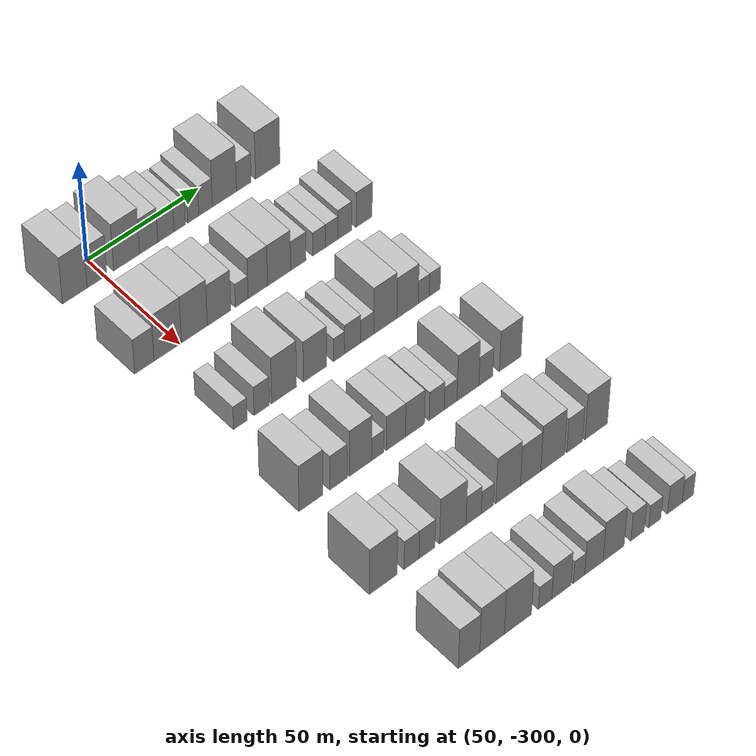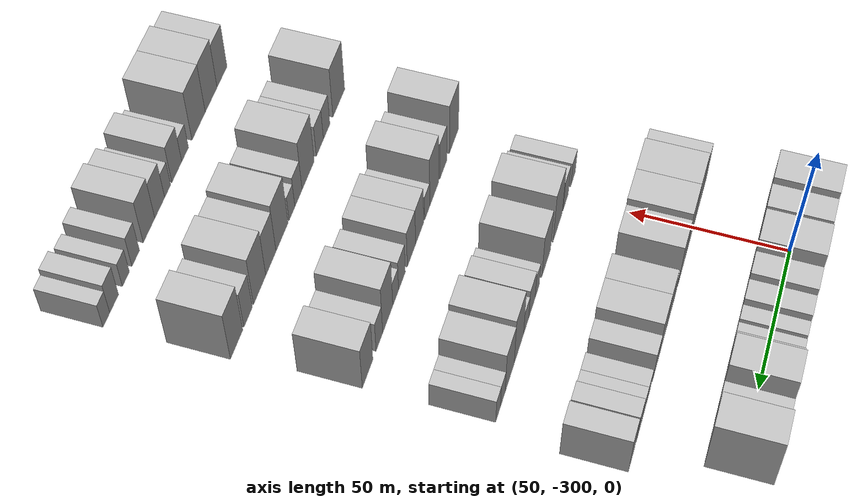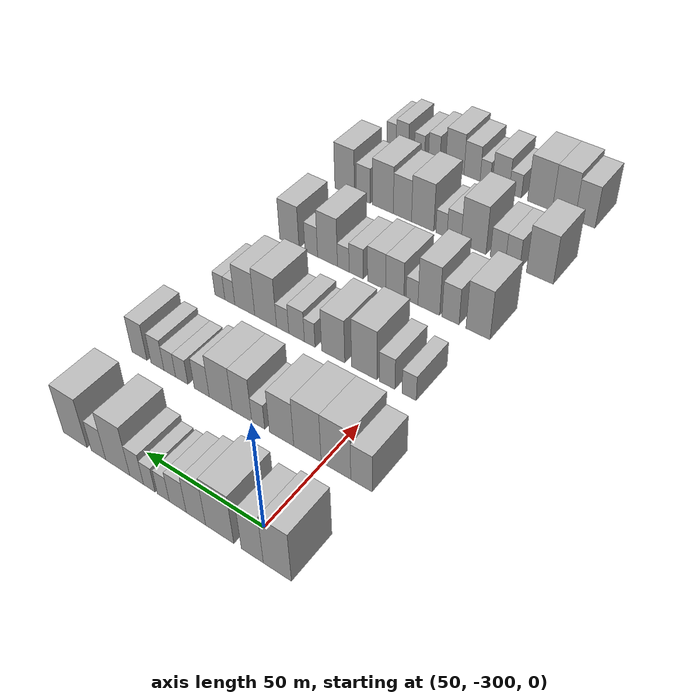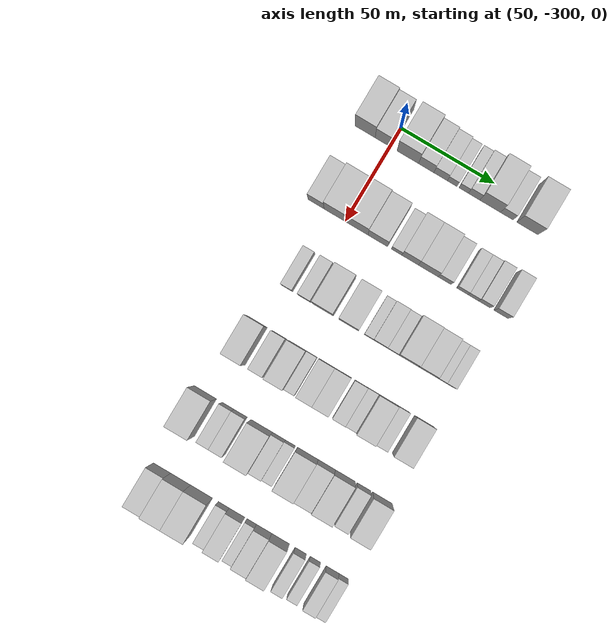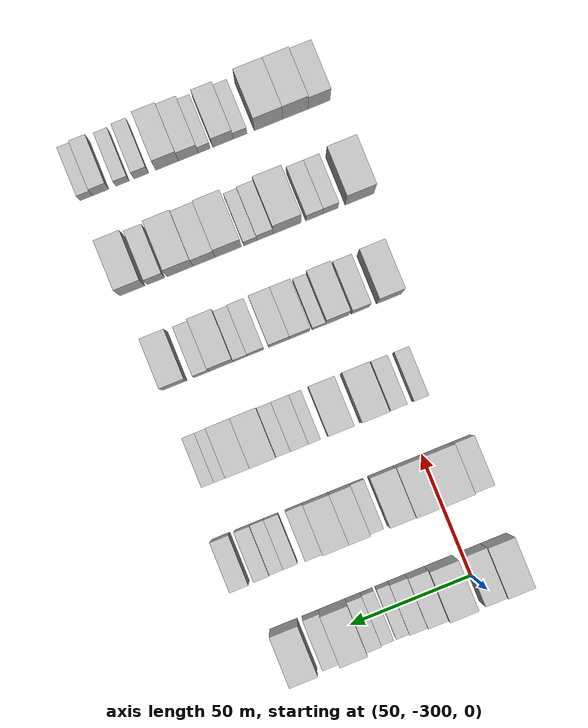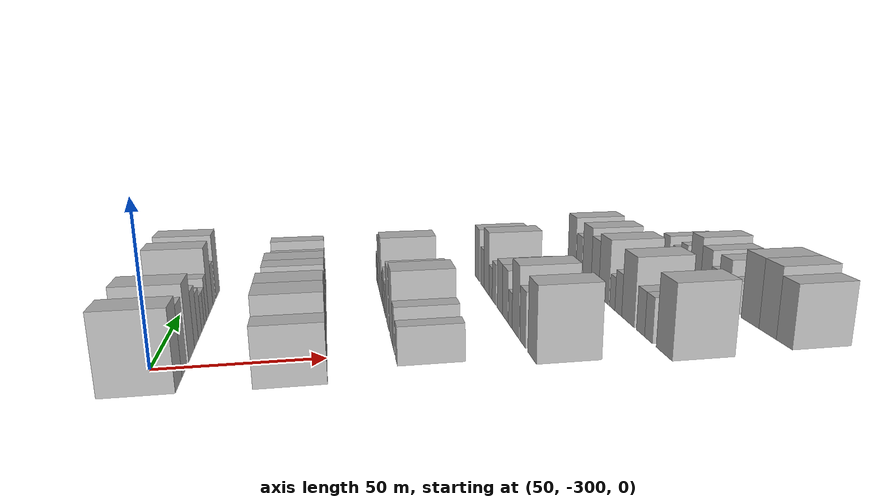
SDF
<sdf version="1.6">
 <world name="default">
  <model name="building_33">
   <static>1</static>
   <pose>50.0000 -313.2828 0 0.000000 0.000000 0.000000</pose>
   <link name="link">
    <pose>0 0 12.00 0 0 0</pose>
    <collision name="collision"><geometry><box><size>20.0000 10.7922 24.0000</size></box></geometry></collision>
    <visual name="visual">
     <cast_shadows>0</cast_shadows>
     <geometry><box><size>20.0000 10.7922 24.0000</size></box></geometry>
     <material>
      <script>
       <uri>model://HANNAS_wall/materials/scripts</uri>
       <uri>model://HANNAS_wall/materials/textures</uri>
       <name>vrc/HANNAS_wall</name>
      </script>
     </material>
    </visual>
   </link>
  </model>
  <model name="building_34">
   <static>1</static>
   <pose>50.0000 -303.5560 0 0.000000 0.000000 0.000000</pose>
   <link name="link">
    <pose>0 0 10.50 0 0 0</pose>
    <collision name="collision"><geometry><box><size>20.0000 8.6615 21.0000</size></box></geometry></collision>
    <visual name="visual">
     <cast_shadows>0</cast_shadows>
     <geometry><box><size>20.0000 8.6615 21.0000</size></box></geometry>
     <material>
      <script>
       <uri>model://HANNAS_wall/materials/scripts</uri>
       <uri>model://HANNAS_wall/materials/textures</uri>
       <name>vrc/HANNAS_wall</name>
      </script>
     </material>
    </visual>
   </link>
  </model>
  <model name="building_35">
   <static>1</static>
   <pose>50.0000 -290.4824 0 0.000000 0.000000 0.000000</pose>
   <link name="link">
    <pose>0 0 12.00 0 0 0</pose>
    <collision name="collision"><geometry><box><size>20.0000 11.4858 24.0000</size></box></geometry></collision>
    <visual name="visual">
     <cast_shadows>0</cast_shadows>
     <geometry><box><size>20.0000 11.4858 24.0000</size></box></geometry>
     <material>
      <script>
       <uri>model://HANNAS_wall/materials/scripts</uri>
       <uri>model://HANNAS_wall/materials/textures</uri>
       <name>vrc/HANNAS_wall</name>
      </script>
     </material>
    </visual>
   </link>
  </model>
  <model name="building_36">
   <static>1</static>
   <pose>50.0000 -280.6749 0 0.000000 0.000000 0.000000</pose>
   <link name="link">
    <pose>0 0 9.00 0 0 0</pose>
    <collision name="collision"><geometry><box><size>20.0000 8.1293 18.0000</size></box></geometry></collision>
    <visual name="visual">
     <cast_shadows>0</cast_shadows>
     <geometry><box><size>20.0000 8.1293 18.0000</size></box></geometry>
     <material>
      <script>
       <uri>model://HANNAS_wall/materials/scripts</uri>
       <uri>model://HANNAS_wall/materials/textures</uri>
       <name>vrc/HANNAS_wall</name>
      </script>
     </material>
    </visual>
   </link>
  </model>
  <model name="building_37">
   <static>1</static>
   <pose>50.0000 -273.0091 0 0.000000 0.000000 0.000000</pose>
   <link name="link">
    <pose>0 0 7.50 0 0 0</pose>
    <collision name="collision"><geometry><box><size>20.0000 7.2023 15.0000</size></box></geometry></collision>
    <visual name="visual">
     <cast_shadows>0</cast_shadows>
     <geometry><box><size>20.0000 7.2023 15.0000</size></box></geometry>
     <material>
      <script>
       <uri>model://HANNAS_wall/materials/scripts</uri>
       <uri>model://HANNAS_wall/materials/textures</uri>
       <name>vrc/HANNAS_wall</name>
      </script>
     </material>
    </visual>
   </link>
  </model>
  <model name="building_38">
   <static>1</static>
   <pose>50.0000 -266.8126 0 0.000000 0.000000 0.000000</pose>
   <link name="link">
    <pose>0 0 6.00 0 0 0</pose>
    <collision name="collision"><geometry><box><size>20.0000 5.1906 12.0000</size></box></geometry></collision>
    <visual name="visual">
     <cast_shadows>0</cast_shadows>
     <geometry><box><size>20.0000 5.1906 12.0000</size></box></geometry>
     <material>
      <script>
       <uri>model://HANNAS_wall/materials/scripts</uri>
       <uri>model://HANNAS_wall/materials/textures</uri>
       <name>vrc/HANNAS_wall</name>
      </script>
     </material>
    </visual>
   </link>
  </model>
  <model name="building_39">
   <static>1</static>
   <pose>50.0000 -260.6925 0 0.000000 0.000000 0.000000</pose>
   <link name="link">
    <pose>0 0 6.00 0 0 0</pose>
    <collision name="collision"><geometry><box><size>20.0000 5.0496 12.0000</size></box></geometry></collision>
    <visual name="visual">
     <cast_shadows>0</cast_shadows>
     <geometry><box><size>20.0000 5.0496 12.0000</size></box></geometry>
     <material>
      <script>
       <uri>model://HANNAS_wall/materials/scripts</uri>
       <uri>model://HANNAS_wall/materials/textures</uri>
       <name>vrc/HANNAS_wall</name>
      </script>
     </material>
    </visual>
   </link>
  </model>
  <model name="building_40">
   <static>1</static>
   <pose>50.0000 -255.1026 0 0.000000 0.000000 0.000000</pose>
   <link name="link">
    <pose>0 0 7.50 0 0 0</pose>
    <collision name="collision"><geometry><box><size>20.0000 6.1303 15.0000</size></box></geometry></collision>
    <visual name="visual">
     <cast_shadows>0</cast_shadows>
     <geometry><box><size>20.0000 6.1303 15.0000</size></box></geometry>
     <material>
      <script>
       <uri>model://HANNAS_wall/materials/scripts</uri>
       <uri>model://HANNAS_wall/materials/textures</uri>
       <name>vrc/HANNAS_wall</name>
      </script>
     </material>
    </visual>
   </link>
  </model>
  <model name="building_41">
   <static>1</static>
   <pose>50.0000 -246.5571 0 0.000000 0.000000 0.000000</pose>
   <link name="link">
    <pose>0 0 12.00 0 0 0</pose>
    <collision name="collision"><geometry><box><size>20.0000 10.9608 24.0000</size></box></geometry></collision>
    <visual name="visual">
     <cast_shadows>0</cast_shadows>
     <geometry><box><size>20.0000 10.9608 24.0000</size></box></geometry>
     <material>
      <script>
       <uri>model://HANNAS_wall/materials/scripts</uri>
       <uri>model://HANNAS_wall/materials/textures</uri>
       <name>vrc/HANNAS_wall</name>
      </script>
     </material>
    </visual>
   </link>
  </model>
  <model name="building_42">
   <static>1</static>
   <pose>50.0000 -237.6984 0 0.000000 0.000000 0.000000</pose>
   <link name="link">
    <pose>0 0 7.50 0 0 0</pose>
    <collision name="collision"><geometry><box><size>20.0000 6.7566 15.0000</size></box></geometry></collision>
    <visual name="visual">
     <cast_shadows>0</cast_shadows>
     <geometry><box><size>20.0000 6.7566 15.0000</size></box></geometry>
     <material>
      <script>
       <uri>model://HANNAS_wall/materials/scripts</uri>
       <uri>model://HANNAS_wall/materials/textures</uri>
       <name>vrc/HANNAS_wall</name>
      </script>
     </material>
    </visual>
   </link>
  </model>
  <model name="building_43">
   <static>1</static>
   <pose>50.0000 -226.6820 0 0.000000 0.000000 0.000000</pose>
   <link name="link">
    <pose>0 0 12.00 0 0 0</pose>
    <collision name="collision"><geometry><box><size>20.0000 11.2763 24.0000</size></box></geometry></collision>
    <visual name="visual">
     <cast_shadows>0</cast_shadows>
     <geometry><box><size>20.0000 11.2763 24.0000</size></box></geometry>
     <material>
      <script>
       <uri>model://HANNAS_wall/materials/scripts</uri>
       <uri>model://HANNAS_wall/materials/textures</uri>
       <name>vrc/HANNAS_wall</name>
      </script>
     </material>
    </visual>
   </link>
  </model>
  <model name="building_160">
   <static>1</static>
   <pose>90.0000 -315.5094 0 0.000000 0.000000 0.000000</pose>
   <link name="link">
    <pose>0 0 9.00 0 0 0</pose>
    <collision name="collision"><geometry><box><size>20.0000 8.4623 18.0000</size></box></geometry></collision>
    <visual name="visual">
     <cast_shadows>0</cast_shadows>
     <geometry><box><size>20.0000 8.4623 18.0000</size></box></geometry>
     <material>
      <script>
       <uri>model://HANNAS_wall/materials/scripts</uri>
       <uri>model://HANNAS_wall/materials/textures</uri>
       <name>vrc/HANNAS_wall</name>
      </script>
     </material>
    </visual>
   </link>
  </model>
  <model name="building_161">
   <static>1</static>
   <pose>90.0000 -305.2793 0 0.000000 0.000000 0.000000</pose>
   <link name="link">
    <pose>0 0 12.00 0 0 0</pose>
    <collision name="collision"><geometry><box><size>20.0000 11.9980 24.0000</size></box></geometry></collision>
    <visual name="visual">
     <cast_shadows>0</cast_shadows>
     <geometry><box><size>20.0000 11.9980 24.0000</size></box></geometry>
     <material>
      <script>
       <uri>model://HANNAS_wall/materials/scripts</uri>
       <uri>model://HANNAS_wall/materials/textures</uri>
       <name>vrc/HANNAS_wall</name>
      </script>
     </material>
    </visual>
   </link>
  </model>
  <model name="building_162">
   <static>1</static>
   <pose>90.0000 -293.5775 0 0.000000 0.000000 0.000000</pose>
   <link name="link">
    <pose>0 0 12.00 0 0 0</pose>
    <collision name="collision"><geometry><box><size>20.0000 11.4056 24.0000</size></box></geometry></collision>
    <visual name="visual">
     <cast_shadows>0</cast_shadows>
     <geometry><box><size>20.0000 11.4056 24.0000</size></box></geometry>
     <material>
      <script>
       <uri>model://HANNAS_wall/materials/scripts</uri>
       <uri>model://HANNAS_wall/materials/textures</uri>
       <name>vrc/HANNAS_wall</name>
      </script>
     </material>
    </visual>
   </link>
  </model>
  <model name="building_163">
   <static>1</static>
   <pose>90.0000 -282.6709 0 0.000000 0.000000 0.000000</pose>
   <link name="link">
    <pose>0 0 10.50 0 0 0</pose>
    <collision name="collision"><geometry><box><size>20.0000 10.4074 21.0000</size></box></geometry></collision>
    <visual name="visual">
     <cast_shadows>0</cast_shadows>
     <geometry><box><size>20.0000 10.4074 21.0000</size></box></geometry>
     <material>
      <script>
       <uri>model://HANNAS_wall/materials/scripts</uri>
       <uri>model://HANNAS_wall/materials/textures</uri>
       <name>vrc/HANNAS_wall</name>
      </script>
     </material>
    </visual>
   </link>
  </model>
  <model name="building_164">
   <static>1</static>
   <pose>90.0000 -272.6101 0 0.000000 0.000000 0.000000</pose>
   <link name="link">
    <pose>0 0 6.00 0 0 0</pose>
    <collision name="collision"><geometry><box><size>20.0000 5.7142 12.0000</size></box></geometry></collision>
    <visual name="visual">
     <cast_shadows>0</cast_shadows>
     <geometry><box><size>20.0000 5.7142 12.0000</size></box></geometry>
     <material>
      <script>
       <uri>model://HANNAS_wall/materials/scripts</uri>
       <uri>model://HANNAS_wall/materials/textures</uri>
       <name>vrc/HANNAS_wall</name>
      </script>
     </material>
    </visual>
   </link>
  </model>
  <model name="building_165">
   <static>1</static>
   <pose>90.0000 -265.3916 0 0.000000 0.000000 0.000000</pose>
   <link name="link">
    <pose>0 0 10.50 0 0 0</pose>
    <collision name="collision"><geometry><box><size>20.0000 8.7228 21.0000</size></box></geometry></collision>
    <visual name="visual">
     <cast_shadows>0</cast_shadows>
     <geometry><box><size>20.0000 8.7228 21.0000</size></box></geometry>
     <material>
      <script>
       <uri>model://HANNAS_wall/materials/scripts</uri>
       <uri>model://HANNAS_wall/materials/textures</uri>
       <name>vrc/HANNAS_wall</name>
      </script>
     </material>
    </visual>
   </link>
  </model>
  <model name="building_166">
   <static>1</static>
   <pose>90.0000 -255.7970 0 0.000000 0.000000 0.000000</pose>
   <link name="link">
    <pose>0 0 10.50 0 0 0</pose>
    <collision name="collision"><geometry><box><size>20.0000 10.4665 21.0000</size></box></geometry></collision>
    <visual name="visual">
     <cast_shadows>0</cast_shadows>
     <geometry><box><size>20.0000 10.4665 21.0000</size></box></geometry>
     <material>
      <script>
       <uri>model://HANNAS_wall/materials/scripts</uri>
       <uri>model://HANNAS_wall/materials/textures</uri>
       <name>vrc/HANNAS_wall</name>
      </script>
     </material>
    </visual>
   </link>
  </model>
  <model name="building_167">
   <static>1</static>
   <pose>90.0000 -247.0839 0 0.000000 0.000000 0.000000</pose>
   <link name="link">
    <pose>0 0 7.50 0 0 0</pose>
    <collision name="collision"><geometry><box><size>20.0000 6.9595 15.0000</size></box></geometry></collision>
    <visual name="visual">
     <cast_shadows>0</cast_shadows>
     <geometry><box><size>20.0000 6.9595 15.0000</size></box></geometry>
     <material>
      <script>
       <uri>model://HANNAS_wall/materials/scripts</uri>
       <uri>model://HANNAS_wall/materials/textures</uri>
       <name>vrc/HANNAS_wall</name>
      </script>
     </material>
    </visual>
   </link>
  </model>
  <model name="building_168">
   <static>1</static>
   <pose>90.0000 -237.6687 0 0.000000 0.000000 0.000000</pose>
   <link name="link">
    <pose>0 0 6.00 0 0 0</pose>
    <collision name="collision"><geometry><box><size>20.0000 5.8711 12.0000</size></box></geometry></collision>
    <visual name="visual">
     <cast_shadows>0</cast_shadows>
     <geometry><box><size>20.0000 5.8711 12.0000</size></box></geometry>
     <material>
      <script>
       <uri>model://HANNAS_wall/materials/scripts</uri>
       <uri>model://HANNAS_wall/materials/textures</uri>
       <name>vrc/HANNAS_wall</name>
      </script>
     </material>
    </visual>
   </link>
  </model>
  <model name="building_169">
   <static>1</static>
   <pose>90.0000 -231.9184 0 0.000000 0.000000 0.000000</pose>
   <link name="link">
    <pose>0 0 6.00 0 0 0</pose>
    <collision name="collision"><geometry><box><size>20.0000 5.6294 12.0000</size></box></geometry></collision>
    <visual name="visual">
     <cast_shadows>0</cast_shadows>
     <geometry><box><size>20.0000 5.6294 12.0000</size></box></geometry>
     <material>
      <script>
       <uri>model://HANNAS_wall/materials/scripts</uri>
       <uri>model://HANNAS_wall/materials/textures</uri>
       <name>vrc/HANNAS_wall</name>
      </script>
     </material>
    </visual>
   </link>
  </model>
  <model name="building_170">
   <static>1</static>
   <pose>90.0000 -225.9456 0 0.000000 0.000000 0.000000</pose>
   <link name="link">
    <pose>0 0 7.50 0 0 0</pose>
    <collision name="collision"><geometry><box><size>20.0000 6.3162 15.0000</size></box></geometry></collision>
    <visual name="visual">
     <cast_shadows>0</cast_shadows>
     <geometry><box><size>20.0000 6.3162 15.0000</size></box></geometry>
     <material>
      <script>
       <uri>model://HANNAS_wall/materials/scripts</uri>
       <uri>model://HANNAS_wall/materials/textures</uri>
       <name>vrc/HANNAS_wall</name>
      </script>
     </material>
    </visual>
   </link>
  </model>
  <model name="building_171">
   <static>1</static>
   <pose>90.0000 -217.0329 0 0.000000 0.000000 0.000000</pose>
   <link name="link">
    <pose>0 0 9.00 0 0 0</pose>
    <collision name="collision"><geometry><box><size>20.0000 7.5092 18.0000</size></box></geometry></collision>
    <visual name="visual">
     <cast_shadows>0</cast_shadows>
     <geometry><box><size>20.0000 7.5092 18.0000</size></box></geometry>
     <material>
      <script>
       <uri>model://HANNAS_wall/materials/scripts</uri>
       <uri>model://HANNAS_wall/materials/textures</uri>
       <name>vrc/HANNAS_wall</name>
      </script>
     </material>
    </visual>
   </link>
  </model>
  <model name="building_294">
   <static>1</static>
   <pose>130.0000 -307.1684 0 0.000000 0.000000 0.000000</pose>
   <link name="link">
    <pose>0 0 6.00 0 0 0</pose>
    <collision name="collision"><geometry><box><size>20.0000 5.9567 12.0000</size></box></geometry></collision>
    <visual name="visual">
     <cast_shadows>0</cast_shadows>
     <geometry><box><size>20.0000 5.9567 12.0000</size></box></geometry>
     <material>
      <script>
       <uri>model://HANNAS_wall/materials/scripts</uri>
       <uri>model://HANNAS_wall/materials/textures</uri>
       <name>vrc/HANNAS_wall</name>
      </script>
     </material>
    </visual>
   </link>
  </model>
  <model name="building_295">
   <static>1</static>
   <pose>130.0000 -297.8545 0 0.000000 0.000000 0.000000</pose>
   <link name="link">
    <pose>0 0 7.50 0 0 0</pose>
    <collision name="collision"><geometry><box><size>20.0000 6.6711 15.0000</size></box></geometry></collision>
    <visual name="visual">
     <cast_shadows>0</cast_shadows>
     <geometry><box><size>20.0000 6.6711 15.0000</size></box></geometry>
     <material>
      <script>
       <uri>model://HANNAS_wall/materials/scripts</uri>
       <uri>model://HANNAS_wall/materials/textures</uri>
       <name>vrc/HANNAS_wall</name>
      </script>
     </material>
    </visual>
   </link>
  </model>
  <model name="building_296">
   <static>1</static>
   <pose>130.0000 -288.0106 0 0.000000 0.000000 0.000000</pose>
   <link name="link">
    <pose>0 0 12.00 0 0 0</pose>
    <collision name="collision"><geometry><box><size>20.0000 11.0166 24.0000</size></box></geometry></collision>
    <visual name="visual">
     <cast_shadows>0</cast_shadows>
     <geometry><box><size>20.0000 11.0166 24.0000</size></box></geometry>
     <material>
      <script>
       <uri>model://HANNAS_wall/materials/scripts</uri>
       <uri>model://HANNAS_wall/materials/textures</uri>
       <name>vrc/HANNAS_wall</name>
      </script>
     </material>
    </visual>
   </link>
  </model>
  <model name="building_297">
   <static>1</static>
   <pose>130.0000 -274.2996 0 0.000000 0.000000 0.000000</pose>
   <link name="link">
    <pose>0 0 10.50 0 0 0</pose>
    <collision name="collision"><geometry><box><size>20.0000 10.4055 21.0000</size></box></geometry></collision>
    <visual name="visual">
     <cast_shadows>0</cast_shadows>
     <geometry><box><size>20.0000 10.4055 21.0000</size></box></geometry>
     <material>
      <script>
       <uri>model://HANNAS_wall/materials/scripts</uri>
       <uri>model://HANNAS_wall/materials/textures</uri>
       <name>vrc/HANNAS_wall</name>
      </script>
     </material>
    </visual>
   </link>
  </model>
  <model name="building_298">
   <static>1</static>
   <pose>130.0000 -263.6416 0 0.000000 0.000000 0.000000</pose>
   <link name="link">
    <pose>0 0 6.00 0 0 0</pose>
    <collision name="collision"><geometry><box><size>20.0000 4.9104 12.0000</size></box></geometry></collision>
    <visual name="visual">
     <cast_shadows>0</cast_shadows>
     <geometry><box><size>20.0000 4.9104 12.0000</size></box></geometry>
     <material>
      <script>
       <uri>model://HANNAS_wall/materials/scripts</uri>
       <uri>model://HANNAS_wall/materials/textures</uri>
       <name>vrc/HANNAS_wall</name>
      </script>
     </material>
    </visual>
   </link>
  </model>
  <model name="building_299">
   <static>1</static>
   <pose>130.0000 -257.5487 0 0.000000 0.000000 0.000000</pose>
   <link name="link">
    <pose>0 0 7.50 0 0 0</pose>
    <collision name="collision"><geometry><box><size>20.0000 7.2754 15.0000</size></box></geometry></collision>
    <visual name="visual">
     <cast_shadows>0</cast_shadows>
     <geometry><box><size>20.0000 7.2754 15.0000</size></box></geometry>
     <material>
      <script>
       <uri>model://HANNAS_wall/materials/scripts</uri>
       <uri>model://HANNAS_wall/materials/textures</uri>
       <name>vrc/HANNAS_wall</name>
      </script>
     </material>
    </visual>
   </link>
  </model>
  <model name="building_300">
   <static>1</static>
   <pose>130.0000 -250.9940 0 0.000000 0.000000 0.000000</pose>
   <link name="link">
    <pose>0 0 6.00 0 0 0</pose>
    <collision name="collision"><geometry><box><size>20.0000 5.8338 12.0000</size></box></geometry></collision>
    <visual name="visual">
     <cast_shadows>0</cast_shadows>
     <geometry><box><size>20.0000 5.8338 12.0000</size></box></geometry>
     <material>
      <script>
       <uri>model://HANNAS_wall/materials/scripts</uri>
       <uri>model://HANNAS_wall/materials/textures</uri>
       <name>vrc/HANNAS_wall</name>
      </script>
     </material>
    </visual>
   </link>
  </model>
  <model name="building_301">
   <static>1</static>
   <pose>130.0000 -242.8408 0 0.000000 0.000000 0.000000</pose>
   <link name="link">
    <pose>0 0 12.00 0 0 0</pose>
    <collision name="collision"><geometry><box><size>20.0000 10.4726 24.0000</size></box></geometry></collision>
    <visual name="visual">
     <cast_shadows>0</cast_shadows>
     <geometry><box><size>20.0000 10.4726 24.0000</size></box></geometry>
     <material>
      <script>
       <uri>model://HANNAS_wall/materials/scripts</uri>
       <uri>model://HANNAS_wall/materials/textures</uri>
       <name>vrc/HANNAS_wall</name>
      </script>
     </material>
    </visual>
   </link>
  </model>
  <model name="building_302">
   <static>1</static>
   <pose>130.0000 -232.6954 0 0.000000 0.000000 0.000000</pose>
   <link name="link">
    <pose>0 0 10.50 0 0 0</pose>
    <collision name="collision"><geometry><box><size>20.0000 9.8182 21.0000</size></box></geometry></collision>
    <visual name="visual">
     <cast_shadows>0</cast_shadows>
     <geometry><box><size>20.0000 9.8182 21.0000</size></box></geometry>
     <material>
      <script>
       <uri>model://HANNAS_wall/materials/scripts</uri>
       <uri>model://HANNAS_wall/materials/textures</uri>
       <name>vrc/HANNAS_wall</name>
      </script>
     </material>
    </visual>
   </link>
  </model>
  <model name="building_303">
   <static>1</static>
   <pose>130.0000 -225.2832 0 0.000000 0.000000 0.000000</pose>
   <link name="link">
    <pose>0 0 6.00 0 0 0</pose>
    <collision name="collision"><geometry><box><size>20.0000 5.0062 12.0000</size></box></geometry></collision>
    <visual name="visual">
     <cast_shadows>0</cast_shadows>
     <geometry><box><size>20.0000 5.0062 12.0000</size></box></geometry>
     <material>
      <script>
       <uri>model://HANNAS_wall/materials/scripts</uri>
       <uri>model://HANNAS_wall/materials/textures</uri>
       <name>vrc/HANNAS_wall</name>
      </script>
     </material>
    </visual>
   </link>
  </model>
  <model name="building_304">
   <static>1</static>
   <pose>130.0000 -220.2561 0 0.000000 0.000000 0.000000</pose>
   <link name="link">
    <pose>0 0 6.00 0 0 0</pose>
    <collision name="collision"><geometry><box><size>20.0000 5.0479 12.0000</size></box></geometry></collision>
    <visual name="visual">
     <cast_shadows>0</cast_shadows>
     <geometry><box><size>20.0000 5.0479 12.0000</size></box></geometry>
     <material>
      <script>
       <uri>model://HANNAS_wall/materials/scripts</uri>
       <uri>model://HANNAS_wall/materials/textures</uri>
       <name>vrc/HANNAS_wall</name>
      </script>
     </material>
    </visual>
   </link>
  </model>
  <model name="building_434">
   <static>1</static>
   <pose>170.0000 -310.9219 0 0.000000 0.000000 0.000000</pose>
   <link name="link">
    <pose>0 0 12.00 0 0 0</pose>
    <collision name="collision"><geometry><box><size>20.0000 10.3274 24.0000</size></box></geometry></collision>
    <visual name="visual">
     <cast_shadows>0</cast_shadows>
     <geometry><box><size>20.0000 10.3274 24.0000</size></box></geometry>
     <material>
      <script>
       <uri>model://HANNAS_wall/materials/scripts</uri>
       <uri>model://HANNAS_wall/materials/textures</uri>
       <name>vrc/HANNAS_wall</name>
      </script>
     </material>
    </visual>
   </link>
  </model>
  <model name="building_435">
   <static>1</static>
   <pose>170.0000 -298.9947 0 0.000000 0.000000 0.000000</pose>
   <link name="link">
    <pose>0 0 9.00 0 0 0</pose>
    <collision name="collision"><geometry><box><size>20.0000 7.5271 18.0000</size></box></geometry></collision>
    <visual name="visual">
     <cast_shadows>0</cast_shadows>
     <geometry><box><size>20.0000 7.5271 18.0000</size></box></geometry>
     <material>
      <script>
       <uri>model://HANNAS_wall/materials/scripts</uri>
       <uri>model://HANNAS_wall/materials/textures</uri>
       <name>vrc/HANNAS_wall</name>
      </script>
     </material>
    </visual>
   </link>
  </model>
  <model name="building_436">
   <static>1</static>
   <pose>170.0000 -289.3646 0 0.000000 0.000000 0.000000</pose>
   <link name="link">
    <pose>0 0 12.00 0 0 0</pose>
    <collision name="collision"><geometry><box><size>20.0000 9.7332 24.0000</size></box></geometry></collision>
    <visual name="visual">
     <cast_shadows>0</cast_shadows>
     <geometry><box><size>20.0000 9.7332 24.0000</size></box></geometry>
     <material>
      <script>
       <uri>model://HANNAS_wall/materials/scripts</uri>
       <uri>model://HANNAS_wall/materials/textures</uri>
       <name>vrc/HANNAS_wall</name>
      </script>
     </material>
    </visual>
   </link>
  </model>
  <model name="building_437">
   <static>1</static>
   <pose>170.0000 -281.7641 0 0.000000 0.000000 0.000000</pose>
   <link name="link">
    <pose>0 0 6.00 0 0 0</pose>
    <collision name="collision"><geometry><box><size>20.0000 5.4678 12.0000</size></box></geometry></collision>
    <visual name="visual">
     <cast_shadows>0</cast_shadows>
     <geometry><box><size>20.0000 5.4678 12.0000</size></box></geometry>
     <material>
      <script>
       <uri>model://HANNAS_wall/materials/scripts</uri>
       <uri>model://HANNAS_wall/materials/textures</uri>
       <name>vrc/HANNAS_wall</name>
      </script>
     </material>
    </visual>
   </link>
  </model>
  <model name="building_438">
   <static>1</static>
   <pose>170.0000 -273.8230 0 0.000000 0.000000 0.000000</pose>
   <link name="link">
    <pose>0 0 9.00 0 0 0</pose>
    <collision name="collision"><geometry><box><size>20.0000 8.4145 18.0000</size></box></geometry></collision>
    <visual name="visual">
     <cast_shadows>0</cast_shadows>
     <geometry><box><size>20.0000 8.4145 18.0000</size></box></geometry>
     <material>
      <script>
       <uri>model://HANNAS_wall/materials/scripts</uri>
       <uri>model://HANNAS_wall/materials/textures</uri>
       <name>vrc/HANNAS_wall</name>
      </script>
     </material>
    </visual>
   </link>
  </model>
  <model name="building_439">
   <static>1</static>
   <pose>170.0000 -265.3281 0 0.000000 0.000000 0.000000</pose>
   <link name="link">
    <pose>0 0 9.00 0 0 0</pose>
    <collision name="collision"><geometry><box><size>20.0000 8.5753 18.0000</size></box></geometry></collision>
    <visual name="visual">
     <cast_shadows>0</cast_shadows>
     <geometry><box><size>20.0000 8.5753 18.0000</size></box></geometry>
     <material>
      <script>
       <uri>model://HANNAS_wall/materials/scripts</uri>
       <uri>model://HANNAS_wall/materials/textures</uri>
       <name>vrc/HANNAS_wall</name>
      </script>
     </material>
    </visual>
   </link>
  </model>
  <model name="building_440">
   <static>1</static>
   <pose>170.0000 -255.6269 0 0.000000 0.000000 0.000000</pose>
   <link name="link">
    <pose>0 0 7.50 0 0 0</pose>
    <collision name="collision"><geometry><box><size>20.0000 6.8272 15.0000</size></box></geometry></collision>
    <visual name="visual">
     <cast_shadows>0</cast_shadows>
     <geometry><box><size>20.0000 6.8272 15.0000</size></box></geometry>
     <material>
      <script>
       <uri>model://HANNAS_wall/materials/scripts</uri>
       <uri>model://HANNAS_wall/materials/textures</uri>
       <name>vrc/HANNAS_wall</name>
      </script>
     </material>
    </visual>
   </link>
  </model>
  <model name="building_441">
   <static>1</static>
   <pose>170.0000 -249.3652 0 0.000000 0.000000 0.000000</pose>
   <link name="link">
    <pose>0 0 6.00 0 0 0</pose>
    <collision name="collision"><geometry><box><size>20.0000 5.6961 12.0000</size></box></geometry></collision>
    <visual name="visual">
     <cast_shadows>0</cast_shadows>
     <geometry><box><size>20.0000 5.6961 12.0000</size></box></geometry>
     <material>
      <script>
       <uri>model://HANNAS_wall/materials/scripts</uri>
       <uri>model://HANNAS_wall/materials/textures</uri>
       <name>vrc/HANNAS_wall</name>
      </script>
     </material>
    </visual>
   </link>
  </model>
  <model name="building_442">
   <static>1</static>
   <pose>170.0000 -241.5807 0 0.000000 0.000000 0.000000</pose>
   <link name="link">
    <pose>0 0 12.00 0 0 0</pose>
    <collision name="collision"><geometry><box><size>20.0000 9.8730 24.0000</size></box></geometry></collision>
    <visual name="visual">
     <cast_shadows>0</cast_shadows>
     <geometry><box><size>20.0000 9.8730 24.0000</size></box></geometry>
     <material>
      <script>
       <uri>model://HANNAS_wall/materials/scripts</uri>
       <uri>model://HANNAS_wall/materials/textures</uri>
       <name>vrc/HANNAS_wall</name>
      </script>
     </material>
    </visual>
   </link>
  </model>
  <model name="building_443">
   <static>1</static>
   <pose>170.0000 -233.4594 0 0.000000 0.000000 0.000000</pose>
   <link name="link">
    <pose>0 0 7.50 0 0 0</pose>
    <collision name="collision"><geometry><box><size>20.0000 6.3696 15.0000</size></box></geometry></collision>
    <visual name="visual">
     <cast_shadows>0</cast_shadows>
     <geometry><box><size>20.0000 6.3696 15.0000</size></box></geometry>
     <material>
      <script>
       <uri>model://HANNAS_wall/materials/scripts</uri>
       <uri>model://HANNAS_wall/materials/textures</uri>
       <name>vrc/HANNAS_wall</name>
      </script>
     </material>
    </visual>
   </link>
  </model>
  <model name="building_444">
   <static>1</static>
   <pose>170.0000 -222.3123 0 0.000000 0.000000 0.000000</pose>
   <link name="link">
    <pose>0 0 10.50 0 0 0</pose>
    <collision name="collision"><geometry><box><size>20.0000 9.9245 21.0000</size></box></geometry></collision>
    <visual name="visual">
     <cast_shadows>0</cast_shadows>
     <geometry><box><size>20.0000 9.9245 21.0000</size></box></geometry>
     <material>
      <script>
       <uri>model://HANNAS_wall/materials/scripts</uri>
       <uri>model://HANNAS_wall/materials/textures</uri>
       <name>vrc/HANNAS_wall</name>
      </script>
     </material>
    </visual>
   </link>
  </model>
  <model name="building_575">
   <static>1</static>
   <pose>210.0000 -314.9759 0 0.000000 0.000000 0.000000</pose>
   <link name="link">
    <pose>0 0 12.00 0 0 0</pose>
    <collision name="collision"><geometry><box><size>20.0000 11.9138 24.0000</size></box></geometry></collision>
    <visual name="visual">
     <cast_shadows>0</cast_shadows>
     <geometry><box><size>20.0000 11.9138 24.0000</size></box></geometry>
     <material>
      <script>
       <uri>model://HANNAS_wall/materials/scripts</uri>
       <uri>model://HANNAS_wall/materials/textures</uri>
       <name>vrc/HANNAS_wall</name>
      </script>
     </material>
    </visual>
   </link>
  </model>
  <model name="building_576">
   <static>1</static>
   <pose>210.0000 -302.8187 0 0.000000 0.000000 0.000000</pose>
   <link name="link">
    <pose>0 0 7.50 0 0 0</pose>
    <collision name="collision"><geometry><box><size>20.0000 6.4006 15.0000</size></box></geometry></collision>
    <visual name="visual">
     <cast_shadows>0</cast_shadows>
     <geometry><box><size>20.0000 6.4006 15.0000</size></box></geometry>
     <material>
      <script>
       <uri>model://HANNAS_wall/materials/scripts</uri>
       <uri>model://HANNAS_wall/materials/textures</uri>
       <name>vrc/HANNAS_wall</name>
      </script>
     </material>
    </visual>
   </link>
  </model>
  <model name="building_577">
   <static>1</static>
   <pose>210.0000 -296.1233 0 0.000000 0.000000 0.000000</pose>
   <link name="link">
    <pose>0 0 7.50 0 0 0</pose>
    <collision name="collision"><geometry><box><size>20.0000 6.9902 15.0000</size></box></geometry></collision>
    <visual name="visual">
     <cast_shadows>0</cast_shadows>
     <geometry><box><size>20.0000 6.9902 15.0000</size></box></geometry>
     <material>
      <script>
       <uri>model://HANNAS_wall/materials/scripts</uri>
       <uri>model://HANNAS_wall/materials/textures</uri>
       <name>vrc/HANNAS_wall</name>
      </script>
     </material>
    </visual>
   </link>
  </model>
  <model name="building_578">
   <static>1</static>
   <pose>210.0000 -284.8205 0 0.000000 0.000000 0.000000</pose>
   <link name="link">
    <pose>0 0 12.00 0 0 0</pose>
    <collision name="collision"><geometry><box><size>20.0000 11.6153 24.0000</size></box></geometry></collision>
    <visual name="visual">
     <cast_shadows>0</cast_shadows>
     <geometry><box><size>20.0000 11.6153 24.0000</size></box></geometry>
     <material>
      <script>
       <uri>model://HANNAS_wall/materials/scripts</uri>
       <uri>model://HANNAS_wall/materials/textures</uri>
       <name>vrc/HANNAS_wall</name>
      </script>
     </material>
    </visual>
   </link>
  </model>
  <model name="building_579">
   <static>1</static>
   <pose>210.0000 -275.6405 0 0.000000 0.000000 0.000000</pose>
   <link name="link">
    <pose>0 0 7.50 0 0 0</pose>
    <collision name="collision"><geometry><box><size>20.0000 6.7447 15.0000</size></box></geometry></collision>
    <visual name="visual">
     <cast_shadows>0</cast_shadows>
     <geometry><box><size>20.0000 6.7447 15.0000</size></box></geometry>
     <material>
      <script>
       <uri>model://HANNAS_wall/materials/scripts</uri>
       <uri>model://HANNAS_wall/materials/textures</uri>
       <name>vrc/HANNAS_wall</name>
      </script>
     </material>
    </visual>
   </link>
  </model>
  <model name="building_580">
   <static>1</static>
   <pose>210.0000 -269.5724 0 0.000000 0.000000 0.000000</pose>
   <link name="link">
    <pose>0 0 6.00 0 0 0</pose>
    <collision name="collision"><geometry><box><size>20.0000 5.3915 12.0000</size></box></geometry></collision>
    <visual name="visual">
     <cast_shadows>0</cast_shadows>
     <geometry><box><size>20.0000 5.3915 12.0000</size></box></geometry>
     <material>
      <script>
       <uri>model://HANNAS_wall/materials/scripts</uri>
       <uri>model://HANNAS_wall/materials/textures</uri>
       <name>vrc/HANNAS_wall</name>
      </script>
     </material>
    </visual>
   </link>
  </model>
  <model name="building_581">
   <static>1</static>
   <pose>210.0000 -260.4000 0 0.000000 0.000000 0.000000</pose>
   <link name="link">
    <pose>0 0 12.00 0 0 0</pose>
    <collision name="collision"><geometry><box><size>20.0000 10.9534 24.0000</size></box></geometry></collision>
    <visual name="visual">
     <cast_shadows>0</cast_shadows>
     <geometry><box><size>20.0000 10.9534 24.0000</size></box></geometry>
     <material>
      <script>
       <uri>model://HANNAS_wall/materials/scripts</uri>
       <uri>model://HANNAS_wall/materials/textures</uri>
       <name>vrc/HANNAS_wall</name>
      </script>
     </material>
    </visual>
   </link>
  </model>
  <model name="building_582">
   <static>1</static>
   <pose>210.0000 -250.3628 0 0.000000 0.000000 0.000000</pose>
   <link name="link">
    <pose>0 0 10.50 0 0 0</pose>
    <collision name="collision"><geometry><box><size>20.0000 9.1210 21.0000</size></box></geometry></collision>
    <visual name="visual">
     <cast_shadows>0</cast_shadows>
     <geometry><box><size>20.0000 9.1210 21.0000</size></box></geometry>
     <material>
      <script>
       <uri>model://HANNAS_wall/materials/scripts</uri>
       <uri>model://HANNAS_wall/materials/textures</uri>
       <name>vrc/HANNAS_wall</name>
      </script>
     </material>
    </visual>
   </link>
  </model>
  <model name="building_583">
   <static>1</static>
   <pose>210.0000 -240.4233 0 0.000000 0.000000 0.000000</pose>
   <link name="link">
    <pose>0 0 12.00 0 0 0</pose>
    <collision name="collision"><geometry><box><size>20.0000 10.7580 24.0000</size></box></geometry></collision>
    <visual name="visual">
     <cast_shadows>0</cast_shadows>
     <geometry><box><size>20.0000 10.7580 24.0000</size></box></geometry>
     <material>
      <script>
       <uri>model://HANNAS_wall/materials/scripts</uri>
       <uri>model://HANNAS_wall/materials/textures</uri>
       <name>vrc/HANNAS_wall</name>
      </script>
     </material>
    </visual>
   </link>
  </model>
  <model name="building_584">
   <static>1</static>
   <pose>210.0000 -230.4310 0 0.000000 0.000000 0.000000</pose>
   <link name="link">
    <pose>0 0 9.00 0 0 0</pose>
    <collision name="collision"><geometry><box><size>20.0000 7.2267 18.0000</size></box></geometry></collision>
    <visual name="visual">
     <cast_shadows>0</cast_shadows>
     <geometry><box><size>20.0000 7.2267 18.0000</size></box></geometry>
     <material>
      <script>
       <uri>model://HANNAS_wall/materials/scripts</uri>
       <uri>model://HANNAS_wall/materials/textures</uri>
       <name>vrc/HANNAS_wall</name>
      </script>
     </material>
    </visual>
   </link>
  </model>
  <model name="building_585">
   <static>1</static>
   <pose>210.0000 -220.6412 0 0.000000 0.000000 0.000000</pose>
   <link name="link">
    <pose>0 0 12.00 0 0 0</pose>
    <collision name="collision"><geometry><box><size>20.0000 10.3529 24.0000</size></box></geometry></collision>
    <visual name="visual">
     <cast_shadows>0</cast_shadows>
     <geometry><box><size>20.0000 10.3529 24.0000</size></box></geometry>
     <material>
      <script>
       <uri>model://HANNAS_wall/materials/scripts</uri>
       <uri>model://HANNAS_wall/materials/textures</uri>
       <name>vrc/HANNAS_wall</name>
      </script>
     </material>
    </visual>
   </link>
  </model>
  <model name="building_713">
   <static>1</static>
   <pose>250.0000 -314.3382 0 0.000000 0.000000 0.000000</pose>
   <link name="link">
    <pose>0 0 10.50 0 0 0</pose>
    <collision name="collision"><geometry><box><size>20.0000 9.1528 21.0000</size></box></geometry></collision>
    <visual name="visual">
     <cast_shadows>0</cast_shadows>
     <geometry><box><size>20.0000 9.1528 21.0000</size></box></geometry>
     <material>
      <script>
       <uri>model://HANNAS_wall/materials/scripts</uri>
       <uri>model://HANNAS_wall/materials/textures</uri>
       <name>vrc/HANNAS_wall</name>
      </script>
     </material>
    </visual>
   </link>
  </model>
  <model name="building_714">
   <static>1</static>
   <pose>250.0000 -304.4407 0 0.000000 0.000000 0.000000</pose>
   <link name="link">
    <pose>0 0 12.00 0 0 0</pose>
    <collision name="collision"><geometry><box><size>20.0000 10.6423 24.0000</size></box></geometry></collision>
    <visual name="visual">
     <cast_shadows>0</cast_shadows>
     <geometry><box><size>20.0000 10.6423 24.0000</size></box></geometry>
     <material>
      <script>
       <uri>model://HANNAS_wall/materials/scripts</uri>
       <uri>model://HANNAS_wall/materials/textures</uri>
       <name>vrc/HANNAS_wall</name>
      </script>
     </material>
    </visual>
   </link>
  </model>
  <model name="building_715">
   <static>1</static>
   <pose>250.0000 -293.2283 0 0.000000 0.000000 0.000000</pose>
   <link name="link">
    <pose>0 0 12.00 0 0 0</pose>
    <collision name="collision"><geometry><box><size>20.0000 11.7825 24.0000</size></box></geometry></collision>
    <visual name="visual">
     <cast_shadows>0</cast_shadows>
     <geometry><box><size>20.0000 11.7825 24.0000</size></box></geometry>
     <material>
      <script>
       <uri>model://HANNAS_wall/materials/scripts</uri>
       <uri>model://HANNAS_wall/materials/textures</uri>
       <name>vrc/HANNAS_wall</name>
      </script>
     </material>
    </visual>
   </link>
  </model>
  <model name="building_716">
   <static>1</static>
   <pose>250.0000 -281.4081 0 0.000000 0.000000 0.000000</pose>
   <link name="link">
    <pose>0 0 6.00 0 0 0</pose>
    <collision name="collision"><geometry><box><size>20.0000 5.8580 12.0000</size></box></geometry></collision>
    <visual name="visual">
     <cast_shadows>0</cast_shadows>
     <geometry><box><size>20.0000 5.8580 12.0000</size></box></geometry>
     <material>
      <script>
       <uri>model://HANNAS_wall/materials/scripts</uri>
       <uri>model://HANNAS_wall/materials/textures</uri>
       <name>vrc/HANNAS_wall</name>
      </script>
     </material>
    </visual>
   </link>
  </model>
  <model name="building_717">
   <static>1</static>
   <pose>250.0000 -274.2579 0 0.000000 0.000000 0.000000</pose>
   <link name="link">
    <pose>0 0 9.00 0 0 0</pose>
    <collision name="collision"><geometry><box><size>20.0000 8.4424 18.0000</size></box></geometry></collision>
    <visual name="visual">
     <cast_shadows>0</cast_shadows>
     <geometry><box><size>20.0000 8.4424 18.0000</size></box></geometry>
     <material>
      <script>
       <uri>model://HANNAS_wall/materials/scripts</uri>
       <uri>model://HANNAS_wall/materials/textures</uri>
       <name>vrc/HANNAS_wall</name>
      </script>
     </material>
    </visual>
   </link>
  </model>
  <model name="building_718">
   <static>1</static>
   <pose>250.0000 -266.5107 0 0.000000 0.000000 0.000000</pose>
   <link name="link">
    <pose>0 0 6.00 0 0 0</pose>
    <collision name="collision"><geometry><box><size>20.0000 5.0519 12.0000</size></box></geometry></collision>
    <visual name="visual">
     <cast_shadows>0</cast_shadows>
     <geometry><box><size>20.0000 5.0519 12.0000</size></box></geometry>
     <material>
      <script>
       <uri>model://HANNAS_wall/materials/scripts</uri>
       <uri>model://HANNAS_wall/materials/textures</uri>
       <name>vrc/HANNAS_wall</name>
      </script>
     </material>
    </visual>
   </link>
  </model>
  <model name="building_719">
   <static>1</static>
   <pose>250.0000 -259.8906 0 0.000000 0.000000 0.000000</pose>
   <link name="link">
    <pose>0 0 9.00 0 0 0</pose>
    <collision name="collision"><geometry><box><size>20.0000 8.1884 18.0000</size></box></geometry></collision>
    <visual name="visual">
     <cast_shadows>0</cast_shadows>
     <geometry><box><size>20.0000 8.1884 18.0000</size></box></geometry>
     <material>
      <script>
       <uri>model://HANNAS_wall/materials/scripts</uri>
       <uri>model://HANNAS_wall/materials/textures</uri>
       <name>vrc/HANNAS_wall</name>
      </script>
     </material>
    </visual>
   </link>
  </model>
  <model name="building_720">
   <static>1</static>
   <pose>250.0000 -251.0820 0 0.000000 0.000000 0.000000</pose>
   <link name="link">
    <pose>0 0 10.50 0 0 0</pose>
    <collision name="collision"><geometry><box><size>20.0000 9.4287 21.0000</size></box></geometry></collision>
    <visual name="visual">
     <cast_shadows>0</cast_shadows>
     <geometry><box><size>20.0000 9.4287 21.0000</size></box></geometry>
     <material>
      <script>
       <uri>model://HANNAS_wall/materials/scripts</uri>
       <uri>model://HANNAS_wall/materials/textures</uri>
       <name>vrc/HANNAS_wall</name>
      </script>
     </material>
    </visual>
   </link>
  </model>
  <model name="building_721">
   <static>1</static>
   <pose>250.0000 -240.3441 0 0.000000 0.000000 0.000000</pose>
   <link name="link">
    <pose>0 0 7.50 0 0 0</pose>
    <collision name="collision"><geometry><box><size>20.0000 6.0470 15.0000</size></box></geometry></collision>
    <visual name="visual">
     <cast_shadows>0</cast_shadows>
     <geometry><box><size>20.0000 6.0470 15.0000</size></box></geometry>
     <material>
      <script>
       <uri>model://HANNAS_wall/materials/scripts</uri>
       <uri>model://HANNAS_wall/materials/textures</uri>
       <name>vrc/HANNAS_wall</name>
      </script>
     </material>
    </visual>
   </link>
  </model>
  <model name="building_722">
   <static>1</static>
   <pose>250.0000 -232.5632 0 0.000000 0.000000 0.000000</pose>
   <link name="link">
    <pose>0 0 6.00 0 0 0</pose>
    <collision name="collision"><geometry><box><size>20.0000 5.5149 12.0000</size></box></geometry></collision>
    <visual name="visual">
     <cast_shadows>0</cast_shadows>
     <geometry><box><size>20.0000 5.5149 12.0000</size></box></geometry>
     <material>
      <script>
       <uri>model://HANNAS_wall/materials/scripts</uri>
       <uri>model://HANNAS_wall/materials/textures</uri>
       <name>vrc/HANNAS_wall</name>
      </script>
     </material>
    </visual>
   </link>
  </model>
  <model name="building_723">
   <static>1</static>
   <pose>250.0000 -223.4421 0 0.000000 0.000000 0.000000</pose>
   <link name="link">
    <pose>0 0 7.50 0 0 0</pose>
    <collision name="collision"><geometry><box><size>20.0000 6.7273 15.0000</size></box></geometry></collision>
    <visual name="visual">
     <cast_shadows>0</cast_shadows>
     <geometry><box><size>20.0000 6.7273 15.0000</size></box></geometry>
     <material>
      <script>
       <uri>model://HANNAS_wall/materials/scripts</uri>
       <uri>model://HANNAS_wall/materials/textures</uri>
       <name>vrc/HANNAS_wall</name>
      </script>
     </material>
    </visual>
   </link>
  </model>
  <model name="building_724">
   <static>1</static>
   <pose>250.0000 -217.4880 0 0.000000 0.000000 0.000000</pose>
   <link name="link">
    <pose>0 0 6.00 0 0 0</pose>
    <collision name="collision"><geometry><box><size>20.0000 5.1809 12.0000</size></box></geometry></collision>
    <visual name="visual">
     <cast_shadows>0</cast_shadows>
     <geometry><box><size>20.0000 5.1809 12.0000</size></box></geometry>
     <material>
      <script>
       <uri>model://HANNAS_wall/materials/scripts</uri>
       <uri>model://HANNAS_wall/materials/textures</uri>
       <name>vrc/HANNAS_wall</name>
      </script>
     </material>
    </visual>
   </link>
  </model>
 </world>
</sdf>
